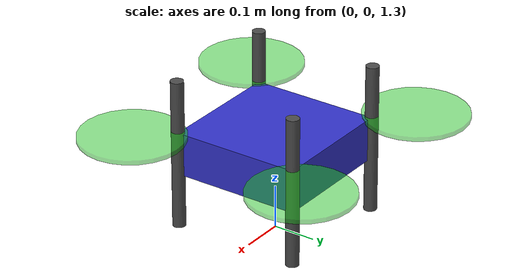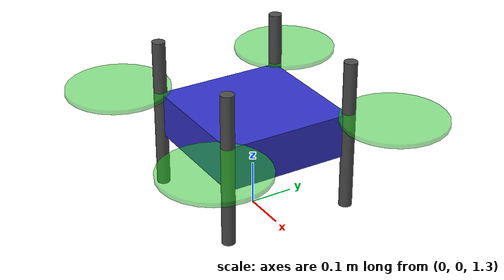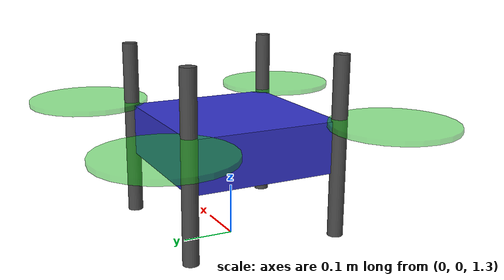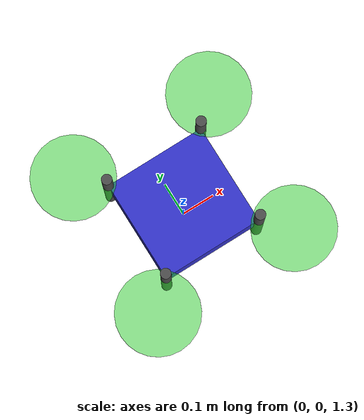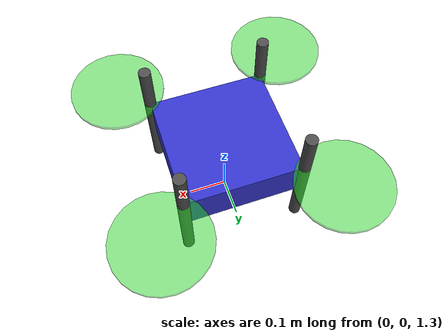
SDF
<?xml version="1.0"?>
<sdf version="1.7">
  <model name="quadrotor">
    <!-- Position: start at origin, 1m above ground -->
    <pose>0 0 1.5 0 0 0</pose>

    <!-- Central body -->
    <link name="base_link">
      <inertial>
        <mass>1.5</mass>
        <inertia>
          <ixx>0.03</ixx><ixy>0</ixy><ixz>0</ixz>
          <iyy>0.03</iyy><iyz>0</iyz>
          <izz>0.04</izz>
        </inertia>
      </inertial>
      <collision name="body_collision">
        <geometry><box><size>0.3 0.3 0.1</size></box></geometry>
      </collision>
      <visual name="body_visual">
        <geometry><box><size>0.3 0.3 0.1</size></box></geometry>
        <material>
          <ambient>0.2 0.2 0.8 1</ambient>
          <diffuse>0.2 0.2 0.8 1</diffuse>
        </material>
      </visual>

      <!-- Four arms -->
      <visual name="arm_fl">
        <pose>0.15 0.15 0 0 0 0.785</pose>
        <geometry><cylinder><radius>0.015</radius><length>0.35</length></cylinder></geometry>
        <material><ambient>0.3 0.3 0.3 1</ambient></material>
      </visual>
      <visual name="arm_fr">
        <pose>0.15 -0.15 0 0 0 -0.785</pose>
        <geometry><cylinder><radius>0.015</radius><length>0.35</length></cylinder></geometry>
        <material><ambient>0.3 0.3 0.3 1</ambient></material>
      </visual>
      <visual name="arm_bl">
        <pose>-0.15 0.15 0 0 0 -0.785</pose>
        <geometry><cylinder><radius>0.015</radius><length>0.35</length></cylinder></geometry>
        <material><ambient>0.3 0.3 0.3 1</ambient></material>
      </visual>
      <visual name="arm_br">
        <pose>-0.15 -0.15 0 0 0 0.785</pose>
        <geometry><cylinder><radius>0.015</radius><length>0.35</length></cylinder></geometry>
        <material><ambient>0.3 0.3 0.3 1</ambient></material>
      </visual>

      <!-- Four rotors (visual only) -->
      <visual name="rotor_fl">
        <pose>0.22 0.22 0.05 0 0 0</pose>
        <geometry><cylinder><radius>0.12</radius><length>0.01</length></cylinder></geometry>
        <material><ambient>0.1 0.8 0.1 0.5</ambient></material>
      </visual>
      <visual name="rotor_fr">
        <pose>0.22 -0.22 0.05 0 0 0</pose>
        <geometry><cylinder><radius>0.12</radius><length>0.01</length></cylinder></geometry>
        <material><ambient>0.1 0.8 0.1 0.5</ambient></material>
      </visual>
      <visual name="rotor_bl">
        <pose>-0.22 0.22 0.05 0 0 0</pose>
        <geometry><cylinder><radius>0.12</radius><length>0.01</length></cylinder></geometry>
        <material><ambient>0.1 0.8 0.1 0.5</ambient></material>
      </visual>
      <visual name="rotor_br">
        <pose>-0.22 -0.22 0.05 0 0 0</pose>
        <geometry><cylinder><radius>0.12</radius><length>0.01</length></cylinder></geometry>
        <material><ambient>0.1 0.8 0.1 0.5</ambient></material>
      </visual>
    </link>

    <!-- Ground truth pose for ROS -->
    <plugin name="ground_truth" filename="libgazebo_ros_p3d.so">
      <bodyName>base_link</bodyName>
      <topicName>drone/ground_truth</topicName>
      <frameName>world</frameName>
      <updateRate>50.0</updateRate>
    </plugin>

    <!-- Force/torque plugin for control -->
    <plugin name="force_control" filename="libgazebo_ros_force.so">
      <bodyName>base_link</bodyName>
      <topicName>drone/force</topicName>
    </plugin>
  </model>
</sdf>
